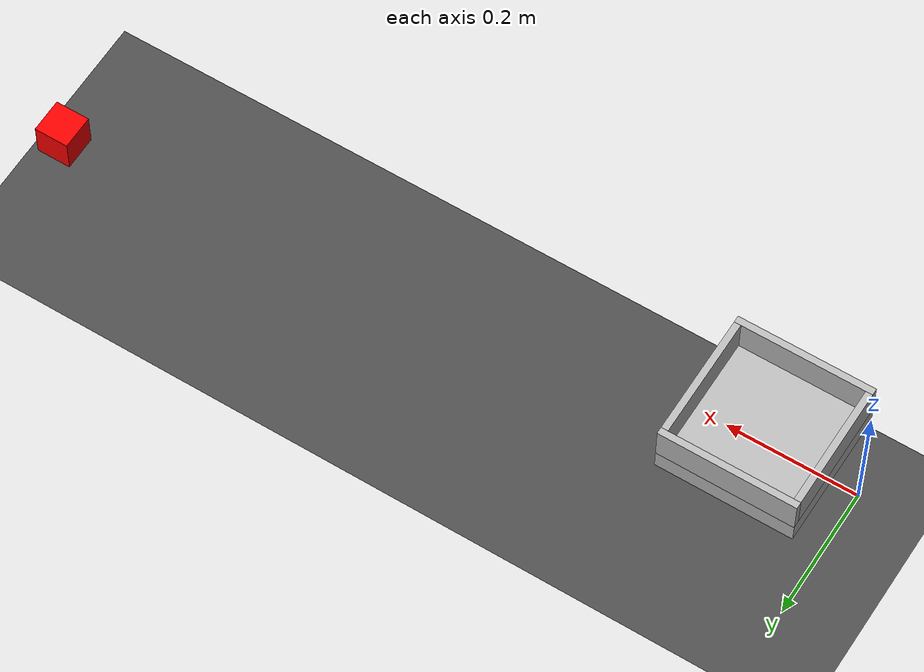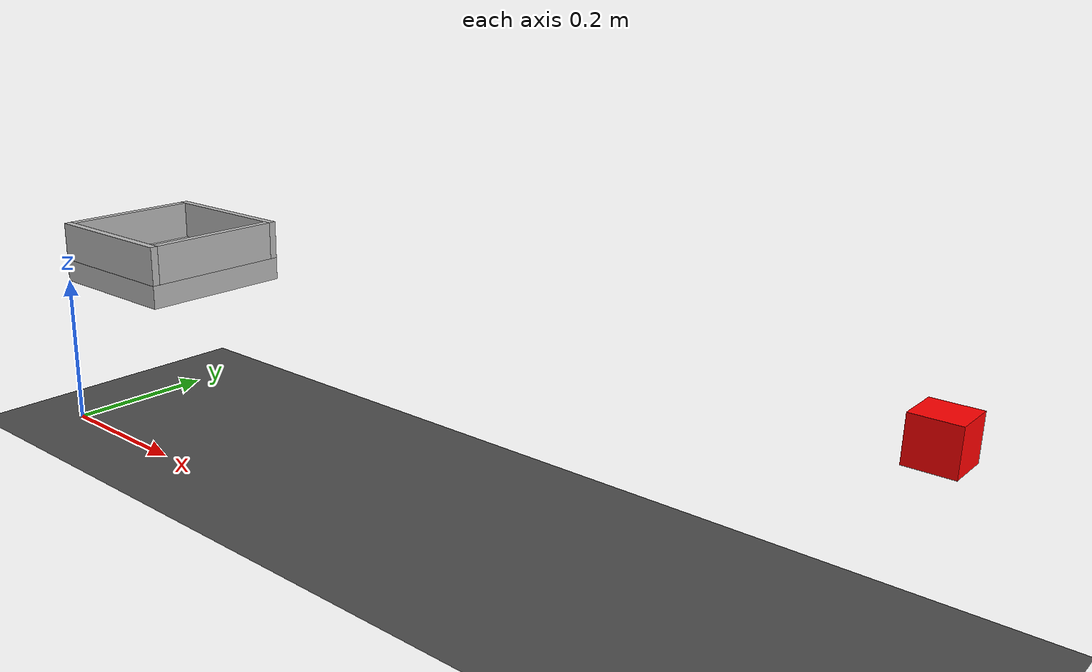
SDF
<?xml version="1.0"?>
<sdf version="1.7">

  <world name="bimanual_world">

    <!-- PHYSICS -->
    <physics name="physics" type="ode">
      <max_step_size>0.001</max_step_size>
      <real_time_factor>1</real_time_factor>
    </physics>

    <!-- PLUGINS -->
    <plugin filename="libignition-gazebo-physics-system.so"
      name="ignition::gazebo::systems::Physics" />

    <plugin filename="libignition-gazebo-user-commands-system.so"
      name="ignition::gazebo::systems::UserCommands" />

    <plugin filename="libignition-gazebo-scene-broadcaster-system.so"
      name="ignition::gazebo::systems::SceneBroadcaster" />

    <plugin filename="libignition-gazebo-sensors-system.so"
      name="ignition::gazebo::systems::Sensors">
      <render_engine>ogre2</render_engine>
    </plugin>

    <!-- SKY + AMBIENT LIGHT -->
    <scene>
      <ambient>0.4 0.4 0.4 1</ambient>
      <background>0.8 0.85 0.9 1</background>
      <shadows>true</shadows>
    </scene>

    <!-- SUN LIGHT -->
    <light type="directional" name="sun">
      <pose>0 0 10 0 0 0</pose>
      <diffuse>1.0 1.0 1.0 1</diffuse>
      <specular>0.3 0.3 0.3 1</specular>
      <direction>-0.5 0.2 -1</direction>
      <attenuation>
        <range>100</range>
        <constant>0.9</constant>
        <linear>0.01</linear>
        <quadratic>0.001</quadratic>
      </attenuation>
      <cast_shadows>true</cast_shadows>
    </light>

    <!-- GROUND -->
    <model name="ground_plane">
      <static>true</static>
      <link name="link">
        <collision name="collision">
          <geometry>
            <plane>
              <normal>0 0 1</normal>
              <size>50 50</size>
            </plane>
          </geometry>
        </collision>
        <visual name="visual">
          <geometry>
            <plane>
              <normal>0 0 1</normal>
              <size>50 50</size>
            </plane>
          </geometry>
          <material>
            <ambient>0.3 0.3 0.3 1</ambient>
            <diffuse>0.3 0.3 0.3 1</diffuse>
          </material>
        </visual>
      </link>
    </model>

    <!-- RED CUBE -->
    <model name="red_cube">
      <pose>1.1 0.2 0.225 0 0 0</pose>
      <link name="link">
        <inertial>
          <mass>0.15</mass>
        </inertial>
        <collision name="collision">
          <geometry>
            <box>
              <size>0.05 0.05 0.05</size>
            </box>
          </geometry>
        </collision>
        <visual name="visual">
          <geometry>
            <box>
              <size>0.05 0.05 0.05</size>
            </box>
          </geometry>
          <material>
            <ambient>1 0 0 1</ambient>
            <diffuse>1 0 0 1</diffuse>
          </material>
        </visual>
      </link>
    </model>

    <!-- OPEN BOX -->
    <model name="open_box">
      <pose>0.1 0.1 0.23 0 0 0</pose>
      <link name="link">
        <inertial>
          <mass>0.5</mass>
        </inertial>
        <collision name="bottom_collision">
          <pose>0 0 -0.015 0 0 0</pose>
          <geometry>
            <box>
              <size>0.2 0.2 0.03</size>
            </box>
          </geometry>
        </collision>
        <visual name="bottom_visual">
          <pose>0 0 -0.015 0 0 0</pose>
          <geometry>
            <box>
              <size>0.2 0.2 0.03</size>
            </box>
          </geometry>
        </visual>
        <collision name="front_collision">
          <pose>0 -0.095 0.025 0 0 0</pose>
          <geometry>
            <box>
              <size>0.2 0.01 0.05</size>
            </box>
          </geometry>
        </collision>
        <visual name="front_visual">
          <pose>0 -0.095 0.025 0 0 0</pose>
          <geometry>
            <box>
              <size>0.2 0.01 0.05</size>
            </box>
          </geometry>
        </visual>
        <collision name="back_collision">
          <pose>0 0.095 0.025 0 0 0</pose>
          <geometry>
            <box>
              <size>0.2 0.01 0.05</size>
            </box>
          </geometry>
        </collision>
        <visual name="back_visual">
          <pose>0 0.095 0.025 0 0 0</pose>
          <geometry>
            <box>
              <size>0.2 0.01 0.05</size>
            </box>
          </geometry>
        </visual>
        <collision name="left_collision">
          <pose>-0.095 0 0.025 0 0 0</pose>
          <geometry>
            <box>
              <size>0.01 0.18 0.05</size>
            </box>
          </geometry>
        </collision>
        <visual name="left_visual">
          <pose>-0.095 0 0.025 0 0 0</pose>
          <geometry>
            <box>
              <size>0.01 0.18 0.05</size>
            </box>
          </geometry>
        </visual>
        <collision name="right_collision">
          <pose>0.095 0 0.025 0 0 0</pose>
          <geometry>
            <box>
              <size>0.01 0.18 0.05</size>
            </box>
          </geometry>
        </collision>
        <visual name="right_visual">
          <pose>0.095 0 0.025 0 0 0</pose>
          <geometry>
            <box>
              <size>0.01 0.18 0.05</size>
            </box>
          </geometry>
        </visual>
      </link>
    </model>

    <!-- OVERHEAD CAMERA -->
    <model name="camera">
      <static>true</static>
      <pose>0.6 -0.6 1.3 0 0.785 1.57</pose>
      <link name="link">
        <sensor name="rgb_camera" type="rgbd">
          <always_on>true</always_on>
          <update_rate>30</update_rate>
          <topic>camera</topic>
          <camera>
            <horizontal_fov>1.047</horizontal_fov>
            <image>
              <width>640</width>
              <height>480</height>
              <format>R8G8B8</format>
            </image>
            <clip>
              <near>0.1</near>
              <far>10</far>
            </clip>
          </camera>
        </sensor>
      </link>
    </model>

  </world>
</sdf>
